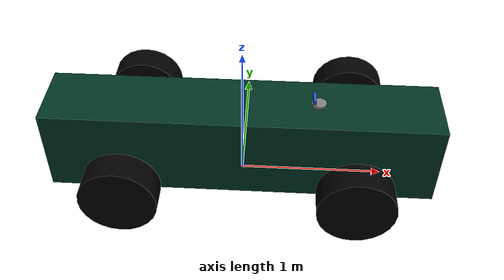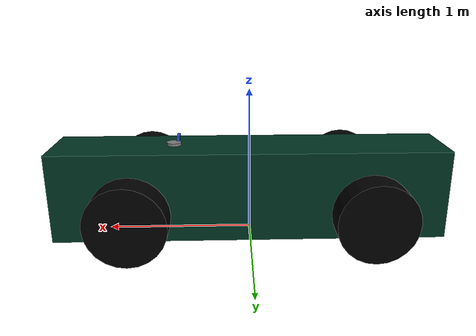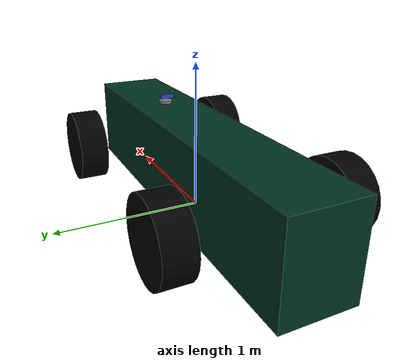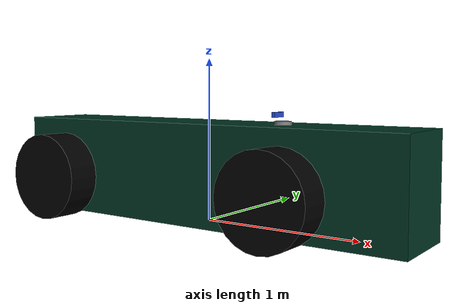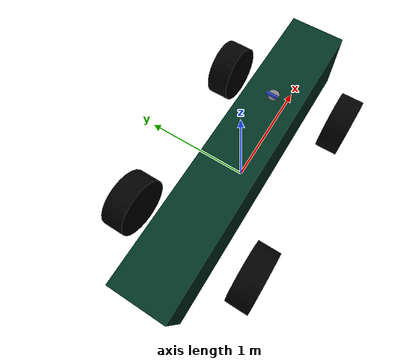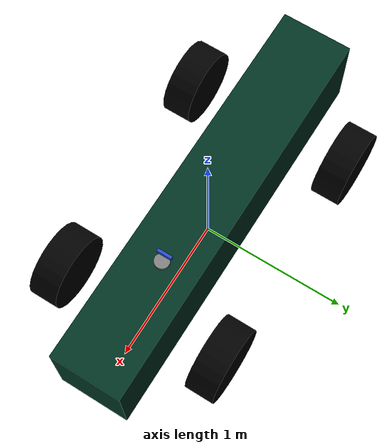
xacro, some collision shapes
<?xml version="1.0"?>

<!-- em_3905.urdf.xacro

Lengths are measured in meters, angles are measured in radians, and masses are
measured in kilograms. All of these values are approximations.

-->

<robot name="ackermann_vehicle" xmlns:xacro="http://www.ros.org/wiki/xacro">

  <xacro:property name="M_PI" value="3.141592653589793"/>
  <!-- Degree-to-radian conversions -->
  <xacro:property name="degrees_45" value="0.785398163"/>
  <xacro:property name="degrees_90" value="1.57079633"/>

  <!-- chassis_length is measured along the x axis, chassis_width
       along the y axis, and chassis_height along the z axis. -->
  <xacro:property name="chassis_length" value="2.7"/>
  <xacro:property name="chassis_width" value="0.489"/>
  <xacro:property name="chassis_height" value="0.614"/>
  <xacro:property name="chassis_mass" value="2.7"/>

  <xacro:property name="hub_dia" value="0.09652"/>
  <xacro:property name="tire_dia" value="0.515"/>
  <xacro:property name="tire_width" value="0.1965"/>
  <xacro:property name="hex_hub_depth" value="0.06825"/>
  <xacro:property name="wheel_mass" value="5.5"/>

  <xacro:property name="wheelbase" value="1.534"/>
  <xacro:property name="hex_hub_dist" value="1.2"/>
  <xacro:property name="axle_length" value="0.03"/>
  <xacro:property name="wheel_travel" value="0.084"/>
  <xacro:property name="shock_z_offset" value="0.0655"/>

  <xacro:property name="shock_eff_limit" value="10000"/>
  <xacro:property name="shock_vel_limit" value="10000"/>

  <xacro:property name="axle_eff_limit" value="10000"/>
  <xacro:property name="axle_vel_limit" value="1000"/>

  <!-- These constants are used to simulate a Traxxas 2056 servo operated at
       6 V. servo_stall_torque is measured in N m. servo_no_load_speed is
       measured in rad/s. -->
  <xacro:property name="servo_stall_torque" value="10000"/>
  <xacro:property name="servo_no_load_speed" value="10000"/>

  <material name="chassis_mat">
    <color rgba="0.0 0.2 0.13 1"/>
  </material>
  <material name="tire_mat">
    <color rgba="0 0 0 1"/>
  </material>

  <!-- Null inertial element. This is needed to make the model work with
       Gazebo. -->
  <xacro:macro name="null_inertial">
    <inertial>
      <mass value="0.001"/>
      <inertia ixx="0.001" ixy="0" ixz="0" iyy="0.001" iyz="0" izz="0.001"/>
    </inertial>
  </xacro:macro>

  <!-- Inertia of a solid cuboid. Width is measured along the x axis, depth
       along the y axis, and height along the z axis. -->
  <xacro:macro name="solid_cuboid_inertial"
               params="width depth height mass *origin">
    <inertial>
      <xacro:insert_block name="origin"/>
      <mass value="${mass}"/>
      <inertia ixx="${mass * (depth * depth + height * height) / 12}"
               ixy="0" ixz="0"
               iyy="${mass * (width * width + height * height) / 12}"
               iyz="0"
               izz="${mass * (width * width + depth * depth) / 12}"/>
    </inertial>
  </xacro:macro>

  <xacro:macro name="thick_walled_tube_inertial"
               params="inner_rad outer_rad height mass">
    <inertial>
      <mass value="${mass}"/>
      <inertia ixx="${(1 / 12) * mass * (3 * (inner_rad * inner_rad +
                    outer_rad * outer_rad) + height * height)}"
               ixy="0" ixz="0"
               iyy="${(1 / 12) * mass * (3 * (inner_rad * inner_rad +
                    outer_rad * outer_rad) + height * height)}"
               iyz="0"
               izz="${mass * (inner_rad * inner_rad +
                    outer_rad * outer_rad) / 2}"/>
    </inertial>
  </xacro:macro>

  <!-- Shock absorber -->
  <xacro:macro name="shock"
               params="lr_prefix fr_prefix lr_reflect fr_reflect child">
    <joint name="${lr_prefix}_${fr_prefix}_shock" type="prismatic">
      <parent link="chassis"/>
      <child link="${child}"/>

      <origin xyz="${fr_reflect * wheelbase / 2}
                   ${lr_reflect * ((hex_hub_dist / 2) - axle_length)}
                   ${(wheel_travel / 2) - shock_z_offset}"/>
      <axis xyz="0 0 -1"/>
      <limit lower="${-wheel_travel / 2}" upper="${wheel_travel / 2}"
             effort="${shock_eff_limit}" velocity="${shock_vel_limit}"/>
    </joint>
    <transmission name="${lr_prefix}_${fr_prefix}_shock_trans">
      <type>transmission_interface/SimpleTransmission</type>
      <joint name="${lr_prefix}_${fr_prefix}_shock">
        <hardwareInterface>hardware_interface/EffortJointInterface</hardwareInterface>
      </joint>
      <actuator name="${lr_prefix}_${fr_prefix}_shock_act">
        <!-- This hardwareInterface element exists for compatibility
             with ROS Hydro. -->
        <hardwareInterface>hardware_interface/EffortJointInterface</hardwareInterface>
        <mechanicalReduction>1</mechanicalReduction>
      </actuator>
    </transmission>
  </xacro:macro>

  <!-- The "wheel" macro defines an axle carrier, axle, and wheel. -->
  <xacro:macro name="wheel" params="lr_prefix fr_prefix lr_reflect">
    <link name="${lr_prefix}_${fr_prefix}_axle_carrier">
      <xacro:null_inertial/>
    </link>

    <!-- The left and right axles have the same axis so that identical
         rotation values cause the wheels to rotate in the same direction. -->
    <joint name="${lr_prefix}_${fr_prefix}_axle" type="continuous">
      <parent link="${lr_prefix}_${fr_prefix}_axle_carrier"/>
      <child link="${lr_prefix}_${fr_prefix}_wheel"/>
      <origin rpy="${degrees_90} 0 0"/>
      <axis xyz="0 0 -1"/>
      <limit effort="${axle_eff_limit}" velocity="${axle_vel_limit}"/>
    </joint>
    <transmission name="${lr_prefix}_${fr_prefix}_axle_trans">
      <type>transmission_interface/SimpleTransmission</type>
      <joint name="${lr_prefix}_${fr_prefix}_axle">
        <hardwareInterface>hardware_interface/EffortJointInterface</hardwareInterface>
      </joint>
      <actuator name="${lr_prefix}_${fr_prefix}_axle_act">
        <!-- This hardwareInterface element exists for compatibility
             with ROS Hydro. -->
        <hardwareInterface>hardware_interface/EffortJointInterface</hardwareInterface>
        <mechanicalReduction>1</mechanicalReduction>
      </actuator>
    </transmission>

    <link name="${lr_prefix}_${fr_prefix}_wheel">
      <visual>
        <origin xyz="0
                     ${lr_reflect * (axle_length - (tire_width /
                     2 - hex_hub_depth))}
                     0"/>
        <geometry>
          <cylinder radius="${tire_dia / 2}" length="${tire_width}"/>
        </geometry>
        <material name="tire_mat"/>
      </visual>

      <collision>
        <origin xyz="0
                     ${lr_reflect * (axle_length - (tire_width /
                     2 - hex_hub_depth))}
                     0"/>
        <geometry>
          <cylinder radius="${tire_dia / 2}" length="${tire_width}"/>
        </geometry>
      </collision>

      <xacro:thick_walled_tube_inertial
          inner_rad="${hub_dia / 2}" outer_rad="${tire_dia / 2}"
          height="${tire_width}" mass="${wheel_mass}"/>
    </link>

    <gazebo reference="${lr_prefix}_${fr_prefix}_wheel">
      <material>Gazebo/Black</material>
    </gazebo>
  </xacro:macro>

  <!-- Front wheel -->
  <xacro:macro name="front_wheel"
               params="lr_prefix fr_prefix lr_reflect fr_reflect">
    <xacro:shock lr_prefix="${lr_prefix}" fr_prefix="${fr_prefix}"
                 lr_reflect="${lr_reflect}" fr_reflect="${fr_reflect}"
                 child="${lr_prefix}_steering_link"/>

    <link name="${lr_prefix}_steering_link">
      <xacro:null_inertial/>
    </link>

    <joint name="${lr_prefix}_steering_joint" type="revolute">
      <parent link="${lr_prefix}_steering_link"/>
      <child link="${lr_prefix}_${fr_prefix}_axle_carrier"/>
      <axis xyz="0 0 1"/>
      <limit lower="${-degrees_45}" upper="${degrees_45}"
             effort="${servo_stall_torque}" velocity="${servo_no_load_speed}"/>
    </joint>
    <transmission name="${lr_prefix}_steering_trans">
      <type>transmission_interface/SimpleTransmission</type>
      <joint name="${lr_prefix}_steering_joint">
        <hardwareInterface>hardware_interface/EffortJointInterface</hardwareInterface>
      </joint>
      <actuator name="${lr_prefix}_steering_act">
        <!-- This hardwareInterface element exists for compatibility
             with ROS Hydro. -->
        <hardwareInterface>hardware_interface/EffortJointInterface</hardwareInterface>
        <mechanicalReduction>1</mechanicalReduction>
      </actuator>
    </transmission>

    <xacro:wheel lr_prefix="${lr_prefix}" fr_prefix="${fr_prefix}"
                 lr_reflect="${lr_reflect}"/>
  </xacro:macro>

  <!-- Rear wheel -->
  <xacro:macro name="rear_wheel"
               params="lr_prefix fr_prefix lr_reflect fr_reflect">
    <xacro:shock lr_prefix="${lr_prefix}" fr_prefix="${fr_prefix}"
                 lr_reflect="${lr_reflect}" fr_reflect="${fr_reflect}"
                 child="${lr_prefix}_${fr_prefix}_axle_carrier"/>
    <xacro:wheel lr_prefix="${lr_prefix}" fr_prefix="${fr_prefix}"
                 lr_reflect="${lr_reflect}"/>
  </xacro:macro>

  <!-- base_link must have geometry so that its axes can be displayed in
       rviz. -->
  <link name="base_link">
    <visual>
      <geometry>
        <box size="0.01 0.01 0.01"/>
      </geometry>
      <material name="chassis_mat"/>
    </visual>
  </link>
  <gazebo reference="base_link">
    <material>Gazebo/Grey</material>
  </gazebo>

  <!-- Chassis -->
  <link name="chassis">
    <visual>
      <origin xyz="-0.1 0 0"/>
      <geometry>
        <mesh filename="package://ackermann_vehicle_description/meshes/ads-dv.stl" scale="1 1 1"/>
      </geometry>
      <material name="chassis_mat"/>
    </visual>

    <collision>
      <origin xyz="0 0 0"/>
      <geometry>
        <box size="${chassis_length} ${chassis_width} ${chassis_height}"/>
      </geometry>
    </collision>

    <xacro:solid_cuboid_inertial
        width="${chassis_length}" depth="${chassis_width}"
        height="${chassis_height}" mass="${chassis_mass}">
      <origin xyz="0 0 0"/>
    </xacro:solid_cuboid_inertial>
  </link>
  <gazebo reference="chassis">
    <material>Gazebo/Grass</material>
  </gazebo>

  <joint name="base_link_to_chassis" type="fixed">
    <origin xyz="0 0 ${chassis_height/2}" rpy="0 0 0" />
    <parent link="base_link"/>
    <child link="chassis"/>
  </joint>

  <!-- Wheels -->
  <xacro:front_wheel lr_prefix="left" fr_prefix="front"
                     lr_reflect="1" fr_reflect="1"/>
  <xacro:front_wheel lr_prefix="right" fr_prefix="front"
                     lr_reflect="-1" fr_reflect="1"/>
  <xacro:rear_wheel lr_prefix="left" fr_prefix="rear"
                    lr_reflect="1" fr_reflect="-1"/>
  <xacro:rear_wheel lr_prefix="right" fr_prefix="rear"
                    lr_reflect="-1" fr_reflect="-1"/>

  <!-- 2D LiDAR -->

  <!-- 3D LiDAR (VLP-16) Frame -->
  <link name="velodyne">
    <visual>
      <origin xyz="0 0 0" rpy="0 0 0"/>
      <geometry>
        <cylinder radius="0.05" length="0.07"/>
      </geometry>
      <material name="lidar_mat">
        <color rgba="0.5 0.5 0.5 1"/>
      </material>
    </visual>
    <inertial>
      <mass value="0.1"/>
      <origin xyz="0 0 0"/>
      <inertia ixx="0.0005" ixy="0" ixz="0" iyy="0.0005" iyz="0" izz="0.0005"/>
    </inertial>
  </link>

  <joint name="velodyne_joint" type="fixed">
    <parent link="base_link"/>
    <child link="velodyne"/>
    <origin xyz="0.52 0 ${chassis_height/2 + 0.29246}" rpy="0 0 0"/>
  </joint>

  <gazebo reference="velodyne">
    <sensor type="ray" name="$velodyne-VLP16">
      <pose>0 0 0 0 0 0</pose>
      <visualize>false</visualize>
      <update_rate>5</update_rate>
      <ray>
        <scan>
          <horizontal>
            <samples>600</samples>
            <resolution>1</resolution>
            <min_angle>-${M_PI}</min_angle>
            <max_angle>${M_PI}</max_angle>
          </horizontal>
          <vertical>
            <samples>16</samples>
            <resolution>1</resolution>
            <min_angle>-${15.0*M_PI/180.0}</min_angle>
            <max_angle> ${15.0*M_PI/180.0}</max_angle>
          </vertical>
        </scan>
        <range>
          <min>2.5</min>
          <max>81</max>
          <resolution>0.01</resolution>
        </range>
        <noise>
          <type>gaussian</type>
          <mean>0.0</mean>
          <stddev>0.0</stddev>
        </noise>
      </ray>
      <plugin name="gazebo_ros_laser_controller" filename="libgazebo_ros_velodyne_laser.so">
        <topicName>/velodyne_points</topicName>
        <frameName>velodyne</frameName>
        <min_range>2.5</min_range>
        <max_range>80.0</max_range>
        <gaussianNoise>0</gaussianNoise>
      </plugin>
    </sensor>
  </gazebo>

  <!-- Depth Camera -->
  <joint name="camera_joint" type="fixed">
    <parent link="base_link" />
    <child link="camera_link" />
    <origin xyz="0.4865 0 ${chassis_height/2 + 0.364}" rpy="0 0 0" />
  </joint>

  <link name="camera_link">
    <visual>
      <geometry>
        <box size="0.02 0.1 0.03"/>
      </geometry>
    </visual>
  </link>

  <joint name="camera_optical_joint" type="fixed">
    <parent link="camera_link"/>
    <child link="camera_link_optical"/>
    <origin xyz="0 0 0" rpy="${-pi/2} 0 ${-pi/2}" />
  </joint>

  <link name="camera_link_optical"></link>

  <gazebo reference="camera_link">
    <material>Gazebo/Blue</material>

    <sensor name="camera" type="depth">
      <pose>0 0 0 0 0 0</pose>
      <visualize>true</visualize>
      <update_rate>30</update_rate>
      <camera>
        <horizontal_fov>1.204</horizontal_fov>
        <image>
          <width>640</width>
          <height>480</height>
          <format>B8G8R8</format>
        </image>
        <clip>
          <near>0.05</near>
          <!-- 8 meters detection range seem to be the sweet spot for most tracks -->
          <!-- 15 meters detection range works best on skidpad -->
          <far>15.0</far>
        </clip>
      </camera>
      <plugin name="camera_controller" filename="libgazebo_ros_openni_kinect.so">
        <frameName>camera_link_optical</frameName>
        <baseline>0.2</baseline>
        <alwaysOn>true</alwaysOn>
        <updateRate>30.0</updateRate>
        <cameraName>ackermann_vehicle_ir</cameraName>
        <imageTopicName>/ackermann_vehicle/color/image_raw</imageTopicName>
        <cameraInfoTopicName>/ackermann_vehicle/color/camera_info</cameraInfoTopicName>
        <depthImageTopicName>/ackermann_vehicle/depth/image_raw</depthImageTopicName>
        <depthImageInfoTopicName>/ackermann_vehicle/depth/camera_info</depthImageInfoTopicName>
        <pointCloudTopicName>/ackermann_vehicle/depth/points</pointCloudTopicName>
        <pointCloudCutoff>0.1</pointCloudCutoff>
        <!-- Trackdrive -->
        <!-- Skidpad -->
        <pointCloudCutoffMax>15.0</pointCloudCutoffMax>
        <distortionK1>0.00000001</distortionK1>
        <distortionK2>0.00000001</distortionK2>
        <distortionK3>0.00000001</distortionK3>
        <distortionT1>0.00000001</distortionT1>
        <distortionT2>0.00000001</distortionT2>
        <CxPrime>0</CxPrime>
        <Cx>0</Cx>
        <Cy>0</Cy>
        <focalLength>0</focalLength>
        <hackBaseline>0</hackBaseline>
      </plugin>
    </sensor>
  </gazebo>

</robot>
